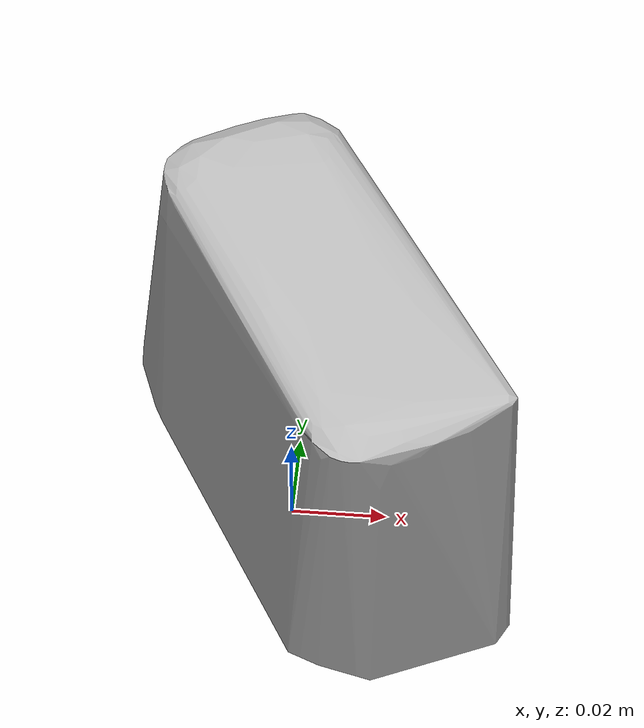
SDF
<?xml version='1.0'?>
<sdf version="1.4">
  <model name="dove_beauty_cream_bar">
    <static>false</static>
    <link name="link">
      <inertial>
        <pose>0.007085594665026284 0.00246064879168935 0.03621086765671125 1.5751566441263336 -0.033061245750637965 -2.6305256791917127</pose>
        <mass>0.02765438820367893</mass>
        <inertia>
          <ixx>3.161639642584227e-05</ixx>
          <ixy>-7.068491439958428e-23</ixy>
          <ixz>-6.203586217437597e-23</ixz>
          <iyy>2.6702661366076582e-05</iyy>
          <iyz>-4.3631022330531066e-23</iyz>
          <izz>1.3580578408594989e-05</izz>
        </inertia>
      </inertial>
      <collision name="collision">
        <geometry>
          <mesh>
            <!-- Use a downsampled mesh for collisions -->
            <uri>model:///dove_beauty_cream_bar/dove_beauty_cream_bar_250_collision.obj</uri>
	        </mesh>
        </geometry>
        <surface>
      </surface>
      </collision>
      <visual name="visual">
        <geometry>
          <mesh>
            <uri>model:///dove_beauty_cream_bar/optimized_tsdf_texture_mapped_mesh.obj</uri>
	        </mesh>
        </geometry>
        <material>
          <script>
            <uri>model:///dove_beauty_cream_bar/dove_beauty_cream_bar.material</uri>
            <name>dove_beauty_cream_bar</name>
          </script>
        </material>
      </visual>
    </link>
  </model>
</sdf>
